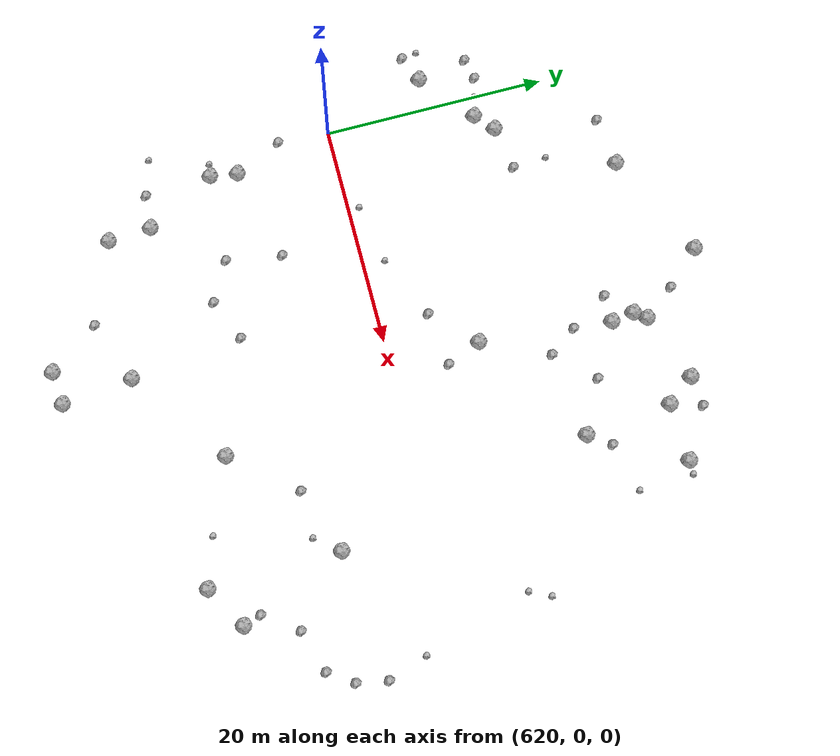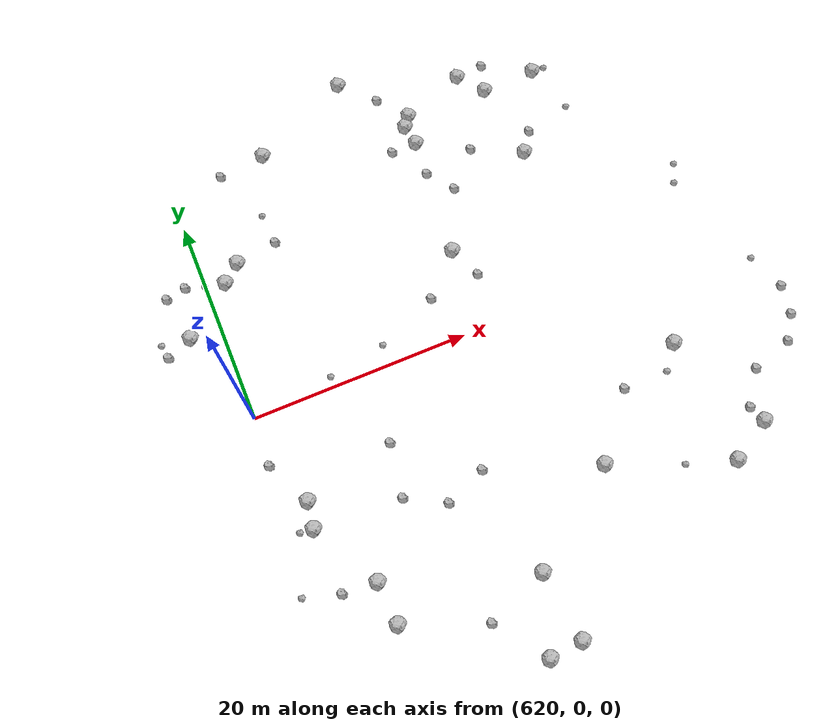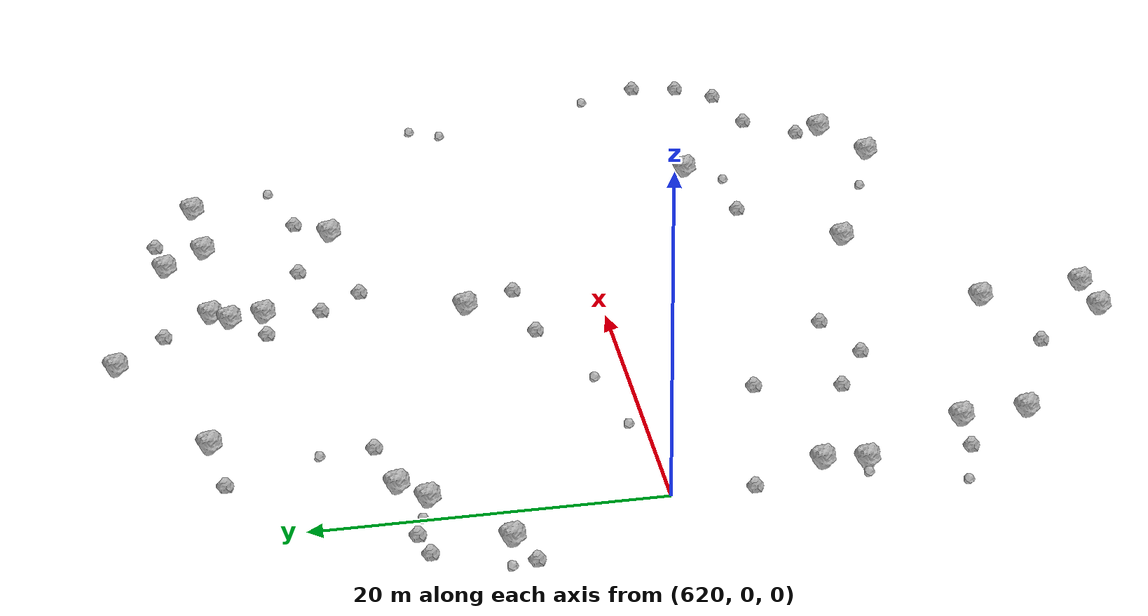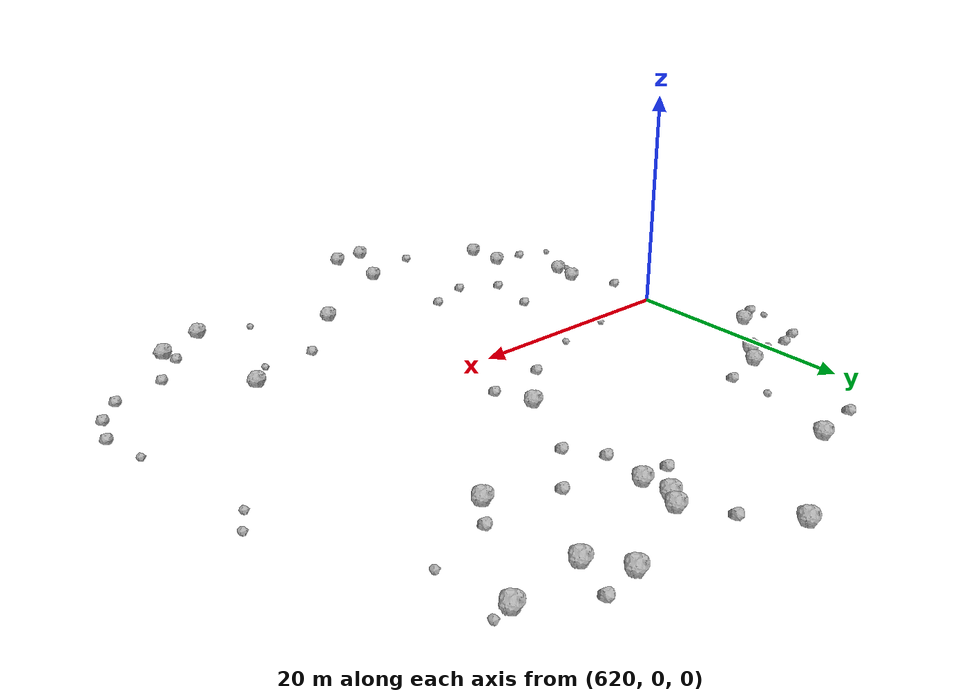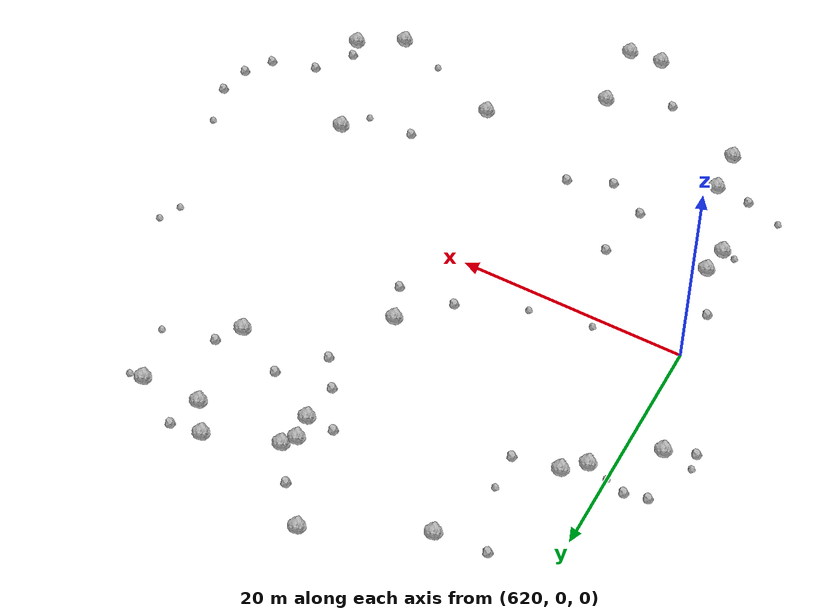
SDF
<sdf version="1.6">
 <world name="default">
  <include><uri>model://sun</uri></include>
  <model name="rock1_16_3">
   <include><uri>model://rock1</uri><pose>621.8668183581393 13.191744658364655 0.5 0 0 0</pose></include>
  </model>
  <model name="rock1_16_4">
   <include><uri>model://rock1</uri><pose>625.0339280935633 -21.519942348120743 0.5 0 0 0</pose></include>
  </model>
  <model name="rock1_16_5">
   <include><uri>model://rock1</uri><pose>652.6305741297085 15.005781741583675 0.5 0 0 0</pose></include>
  </model>
  <model name="rock1_16_6">
   <include><uri>model://rock1</uri><pose>643.904737558478 23.083446760085018 0.5 0 0 0</pose></include>
  </model>
  <model name="rock1_16_7">
   <include><uri>model://rock1</uri><pose>642.2563606180577 8.088421868700252 0.5 0 0 0</pose></include>
  </model>
  <model name="rock1_16_8">
   <include><uri>model://rock1</uri><pose>629.4244140505685 24.422192773152986 0.5 0 0 0</pose></include>
  </model>
  <model name="rock1_16_9">
   <include><uri>model://rock1</uri><pose>646.5320525106017 -15.904304921736308 0.5 0 0 0</pose></include>
  </model>
  <model name="rock1_16_10">
   <include><uri>model://rock1</uri><pose>657.0306248954842 23.031380066345072 0.5 0 0 0</pose></include>
  </model>
  <model name="rock1_16_11">
   <include><uri>model://rock1</uri><pose>649.9661018120137 25.29462822805344 0.5 0 0 0</pose></include>
  </model>
  <model name="rock1_16_12">
   <include><uri>model://rock1</uri><pose>638.8386300299499 28.98188644788324 0.5 0 0 0</pose></include>
  </model>
  <model name="rock1_16_13">
   <include><uri>model://rock1</uri><pose>637.776730482286 -22.301904880332 0.5 0 0 0</pose></include>
  </model>
  <model name="rock1_16_14">
   <include><uri>model://rock1</uri><pose>621.7915296915639 -8.891599209528163 0.5 0 0 0</pose></include>
  </model>
  <model name="rock1_16_15">
   <include><uri>model://rock1</uri><pose>643.1359512610874 22.030586539432974 0.5 0 0 0</pose></include>
  </model>
  <model name="rock1_16_16">
   <include><uri>model://rock1</uri><pose>643.4336383454976 19.982980692183624 0.5 0 0 0</pose></include>
  </model>
  <model name="rock1_16_17">
   <include><uri>model://rock1</uri><pose>624.782532917256 -17.624935535700324 0.5 0 0 0</pose></include>
  </model>
  <model name="rock1_16_18">
   <include><uri>model://rock1</uri><pose>638.4647894639239 -28.6595971382264 0.5 0 0 0</pose></include>
  </model>
  <model name="rock1_16_19">
   <include><uri>model://rock1</uri><pose>657.3039192477644 -20.057018383117672 0.5 0 0 0</pose></include>
  </model>
  <model name="rock1_16_20">
   <include><uri>model://rock1</uri><pose>617.2314393191834 9.252089858985286 0.5 0 0 0</pose></include>
  </model>
  <model name="rock1_16_21">
   <include><uri>model://rock1</uri><pose>623.5258861773807 14.677211607188212 0.5 0 0 0</pose></include>
  </model>
  <model name="rock1_16_22">
   <include><uri>model://rock1</uri><pose>657.0419779360827 -8.168145173270812 0.5 0 0 0</pose></include>
  </model>
  <model name="rock1_16_23">
   <include><uri>model://rock1</uri><pose>661.0873835548658 -17.817891392837787 0.5 0 0 0</pose></include>
  </model>
  <model name="rock1_16_24">
   <include><uri>model://rock1</uri><pose>635.4596184478258 -28.91731004471259 0.5 0 0 0</pose></include>
  </model>
  <model name="rock1_16_25">
   <include><uri>model://rock1</uri><pose>651.8367312952578 22.82361228104471 0.5 0 0 0</pose></include>
  </model>
  <model name="rock1_16_26">
   <include><uri>model://rock1</uri><pose>621.4136786929911 -11.33883441347266 0.5 0 0 0</pose></include>
  </model>
  <model name="rock2_16_0">
   <include><uri>model://rock2</uri><pose>627.4027730049279 15.415036776735121 0.3 0 0 0</pose></include>
  </model>
  <model name="rock2_16_1">
   <include><uri>model://rock2</uri><pose>640.9509158342147 20.019636290285 0.3 0 0 0</pose></include>
  </model>
  <model name="rock2_16_2">
   <include><uri>model://rock2</uri><pose>652.6403127474955 25.657952993115096 0.3 0 0 0</pose></include>
  </model>
  <model name="rock2_16_3">
   <include><uri>model://rock2</uri><pose>666.5906821730097 -11.979413787809843 0.3 0 0 0</pose></include>
  </model>
  <model name="rock2_16_4">
   <include><uri>model://rock2</uri><pose>614.7779176860903 8.30405074029165 0.3 0 0 0</pose></include>
  </model>
  <model name="rock2_16_5">
   <include><uri>model://rock2</uri><pose>630.1329812141635 -6.7941738659210245 0.3 0 0 0</pose></include>
  </model>
  <model name="rock2_16_6">
   <include><uri>model://rock2</uri><pose>668.6148141960543 -6.960467816633745 0.3 0 0 0</pose></include>
  </model>
  <model name="rock2_16_7">
   <include><uri>model://rock2</uri><pose>621.6636904495297 -17.359924340530846 0.3 0 0 0</pose></include>
  </model>
  <model name="rock2_16_8">
   <include><uri>model://rock2</uri><pose>632.8018219455197 -13.738803515539125 0.3 0 0 0</pose></include>
  </model>
  <model name="rock2_16_9">
   <include><uri>model://rock2</uri><pose>638.6013819086786 4.450366132638166 0.3 0 0 0</pose></include>
  </model>
  <model name="rock2_16_10">
   <include><uri>model://rock2</uri><pose>662.7142195799138 -13.196456226646166 0.3 0 0 0</pose></include>
  </model>
  <model name="rock2_16_11">
   <include><uri>model://rock2</uri><pose>643.1177240441791 16.583666224901336 0.3 0 0 0</pose></include>
  </model>
  <model name="rock2_16_12">
   <include><uri>model://rock2</uri><pose>643.47529000945 5.037155297729811 0.3 0 0 0</pose></include>
  </model>
  <model name="rock2_16_13">
   <include><uri>model://rock2</uri><pose>619.7538554442739 -4.61619226145794 0.3 0 0 0</pose></include>
  </model>
  <model name="rock2_16_14">
   <include><uri>model://rock2</uri><pose>668.1101585444824 -9.761943551393529 0.3 0 0 0</pose></include>
  </model>
  <model name="rock2_16_15">
   <include><uri>model://rock2</uri><pose>641.6757792187631 25.97772795330824 0.3 0 0 0</pose></include>
  </model>
  <model name="rock2_16_16">
   <include><uri>model://rock2</uri><pose>660.5299091687427 -16.208079250996185 0.3 0 0 0</pose></include>
  </model>
  <model name="rock2_16_17">
   <include><uri>model://rock2</uri><pose>647.9976253952359 17.40360614884262 0.3 0 0 0</pose></include>
  </model>
  <model name="rock2_16_18">
   <include><uri>model://rock2</uri><pose>616.365238576397 13.799900222963274 0.3 0 0 0</pose></include>
  </model>
  <model name="rock2_16_19">
   <include><uri>model://rock2</uri><pose>644.9166893863722 14.087480265046835 0.3 0 0 0</pose></include>
  </model>
  <model name="rock2_16_20">
   <include><uri>model://rock2</uri><pose>618.2617000781764 14.228566265912264 0.3 0 0 0</pose></include>
  </model>
  <model name="rock2_16_21">
   <include><uri>model://rock2</uri><pose>624.9624790103758 23.94282330497552 0.3 0 0 0</pose></include>
  </model>
  <model name="rock2_16_22">
   <include><uri>model://rock2</uri><pose>636.5577582674115 -12.164599979808607 0.3 0 0 0</pose></include>
  </model>
  <model name="rock2_16_23">
   <include><uri>model://rock2</uri><pose>653.9731152616397 17.02422287053726 0.3 0 0 0</pose></include>
  </model>
  <model name="rock2_16_24">
   <include><uri>model://rock2</uri><pose>629.3233159612912 -11.787273418311965 0.3 0 0 0</pose></include>
  </model>
  <model name="rock2_16_25">
   <include><uri>model://rock2</uri><pose>651.0746472528099 -10.304931104996829 0.3 0 0 0</pose></include>
  </model>
  <model name="rock2_16_26">
   <include><uri>model://rock2</uri><pose>632.1760656167921 -24.43285141132214 0.3 0 0 0</pose></include>
  </model>
  <model name="rock3_16_0">
   <include><uri>model://rock3</uri><pose>627.5100706257476 0.9453349073341926 0.2 0 0 0</pose></include>
  </model>
  <model name="rock3_16_1">
   <include><uri>model://rock3</uri><pose>620.1806247465512 -11.173772943239648 0.2 0 0 0</pose></include>
  </model>
  <model name="rock3_16_2">
   <include><uri>model://rock3</uri><pose>618.4427971592709 -16.397741910274355 0.2 0 0 0</pose></include>
  </model>
  <model name="rock3_16_3">
   <include><uri>model://rock3</uri><pose>627.201892628329 18.471515756456647 0.2 0 0 0</pose></include>
  </model>
  <model name="rock3_16_4">
   <include><uri>model://rock3</uri><pose>665.2554055672936 8.310237999334419 0.2 0 0 0</pose></include>
  </model>
  <model name="rock3_16_5">
   <include><uri>model://rock3</uri><pose>652.9481004968187 -18.633677429270925 0.2 0 0 0</pose></include>
  </model>
  <model name="rock3_16_6">
   <include><uri>model://rock3</uri><pose>632.8855321114792 1.9386540403376884 0.2 0 0 0</pose></include>
  </model>
  <model name="rock3_16_7">
   <include><uri>model://rock3</uri><pose>667.3999666586479 -3.3966878928848736 0.2 0 0 0</pose></include>
  </model>
  <model name="rock3_16_8">
   <include><uri>model://rock3</uri><pose>658.4211920196823 18.154226848611742 0.2 0 0 0</pose></include>
  </model>
  <model name="rock3_16_9">
   <include><uri>model://rock3</uri><pose>658.2333922226378 23.07033844776099 0.2 0 0 0</pose></include>
  </model>
  <model name="rock3_16_10">
   <include><uri>model://rock3</uri><pose>619.9568688952388 13.676554059795656 0.2 0 0 0</pose></include>
  </model>
  <model name="rock3_16_11">
   <include><uri>model://rock3</uri><pose>664.3713114906698 6.469280453956024 0.2 0 0 0</pose></include>
  </model>
  <model name="rock3_16_12">
   <include><uri>model://rock3</uri><pose>614.5425824216146 9.652826941523116 0.2 0 0 0</pose></include>
  </model>
  <model name="rock3_16_13">
   <include><uri>model://rock3</uri><pose>655.2822384643905 -10.325970413845216 0.2 0 0 0</pose></include>
  </model>
 </world>
</sdf>
